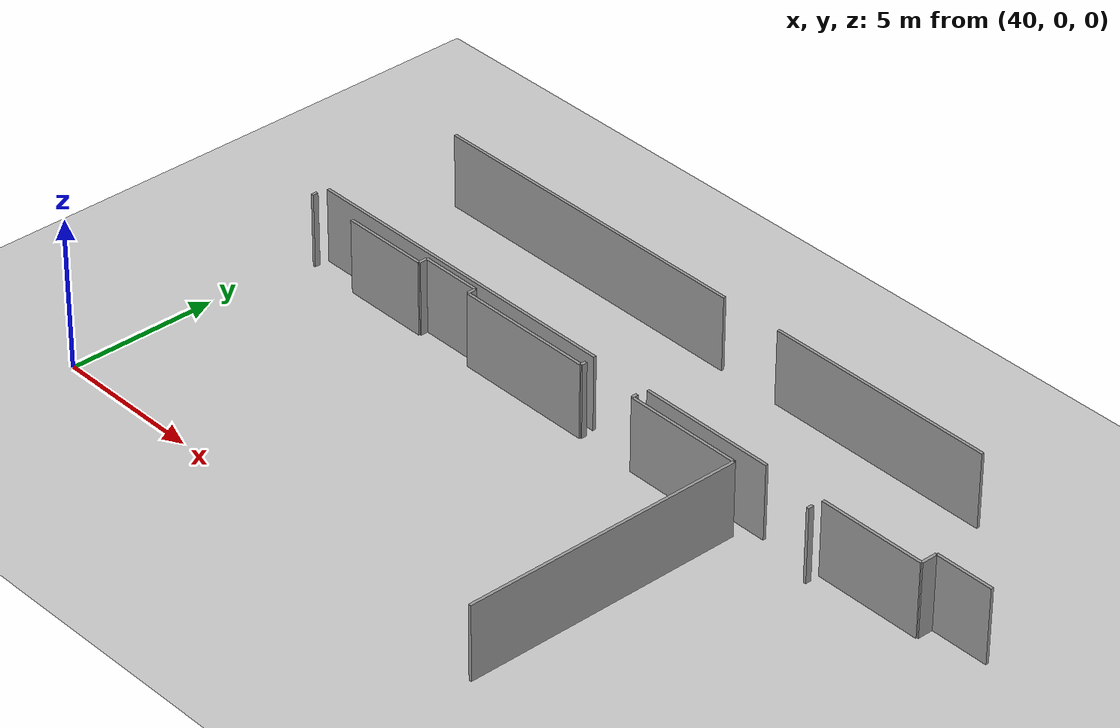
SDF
<sdf version="1.6">
 <world name="default">
  <model name="ground_plane">
   <static>1</static>
   <link name="link">
    <collision name="collision">
     <geometry><plane><normal>0 0 1</normal><size>100 100</size></plane></geometry>
     <surface><friction><ode><mu>100</mu><mu2>50</mu2></ode></friction></surface>
    </collision>
    <visual name="visual">
     <cast_shadows>0</cast_shadows>
     <geometry><plane><normal>0 0 1</normal><size>100 100</size></plane></geometry>
     <material>
      <script><uri>file://media/materials/scripts/gazebo.material</uri><name>Gazebo/Grey</name></script>
     </material>
    </visual>
   </link>
  </model>
  <model name="0510032194_A_40_1_102">
   <static>1</static>
   <link name="Wall_162">
    <collision name="Wall_162_Collision">
     <geometry><box><size>0.196277839927 0.1 2.5</size></box></geometry>
     <pose>0.0981389199634 0 1.25 0 0 0</pose>
    </collision>
    <visual name="Wall_162_Visual">
     <pose>0.0981389199634 0 1.25 0 0 0</pose>
     <geometry><box><size>0.196277839927 0.1 2.5</size></box></geometry>
     <material>
      <script><uri>file://media/materials/scripts/gazebo.material</uri><name>Gazebo/Grey</name></script>
      <ambient>1 1 1 1</ambient>
     </material>
    </visual>
    <pose>128.763983525 -15.2337791112 0 0 0 -1.57079632679</pose>
   </link>
   <link name="Wall_170">
    <collision name="Wall_170_Collision">
     <geometry><box><size>2.9594223533 0.1 2.5</size></box></geometry>
     <pose>1.47971117665 0 1.25 0 0 0</pose>
    </collision>
    <visual name="Wall_170_Visual">
     <pose>1.47971117665 0 1.25 0 0 0</pose>
     <geometry><box><size>2.9594223533 0.1 2.5</size></box></geometry>
     <material>
      <script><uri>file://media/materials/scripts/gazebo.material</uri><name>Gazebo/Grey</name></script>
      <ambient>1 1 1 1</ambient>
     </material>
    </visual>
    <pose>110.06673955 -15.4224295739 0 0 0 0.0</pose>
   </link>
   <link name="Wall_171">
    <collision name="Wall_171_Collision">
     <geometry><box><size>0.296959218957 0.1 2.5</size></box></geometry>
     <pose>0.148479609478 0 1.25 0 0 0</pose>
    </collision>
    <visual name="Wall_171_Visual">
     <pose>0.148479609478 0 1.25 0 0 0</pose>
     <geometry><box><size>0.296959218957 0.1 2.5</size></box></geometry>
     <material>
      <script><uri>file://media/materials/scripts/gazebo.material</uri><name>Gazebo/Grey</name></script>
      <ambient>1 1 1 1</ambient>
     </material>
    </visual>
    <pose>113.026161904 -15.4224295739 0 0 0 1.57079632679</pose>
   </link>
   <link name="Wall_172">
    <collision name="Wall_172_Collision">
     <geometry><box><size>2.09498627072 0.1 2.5</size></box></geometry>
     <pose>1.04749313536 0 1.25 0 0 0</pose>
    </collision>
    <visual name="Wall_172_Visual">
     <pose>1.04749313536 0 1.25 0 0 0</pose>
     <geometry><box><size>2.09498627072 0.1 2.5</size></box></geometry>
     <material>
      <script><uri>file://media/materials/scripts/gazebo.material</uri><name>Gazebo/Grey</name></script>
      <ambient>1 1 1 1</ambient>
     </material>
    </visual>
    <pose>113.026161904 -15.1254703549 0 0 0 0.0</pose>
   </link>
   <link name="Wall_173">
    <collision name="Wall_173_Collision">
     <geometry><box><size>0.290094579477 0.1 2.5</size></box></geometry>
     <pose>0.145047289739 0 1.25 0 0 0</pose>
    </collision>
    <visual name="Wall_173_Visual">
     <pose>0.145047289739 0 1.25 0 0 0</pose>
     <geometry><box><size>0.290094579477 0.1 2.5</size></box></geometry>
     <material>
      <script><uri>file://media/materials/scripts/gazebo.material</uri><name>Gazebo/Grey</name></script>
      <ambient>1 1 1 1</ambient>
     </material>
    </visual>
    <pose>115.121148175 -15.1254703549 0 0 0 -1.57079632679</pose>
   </link>
   <link name="Wall_174">
    <collision name="Wall_174_Collision">
     <geometry><box><size>4.72770263399 0.1 2.5</size></box></geometry>
     <pose>2.36385131699 0 1.25 0 0 0</pose>
    </collision>
    <visual name="Wall_174_Visual">
     <pose>2.36385131699 0 1.25 0 0 0</pose>
     <geometry><box><size>4.72770263399 0.1 2.5</size></box></geometry>
     <material>
      <script><uri>file://media/materials/scripts/gazebo.material</uri><name>Gazebo/Grey</name></script>
      <ambient>1 1 1 1</ambient>
     </material>
    </visual>
    <pose>115.121148175 -15.4155649344 0 0 0 0.0</pose>
   </link>
   <link name="Wall_175">
    <collision name="Wall_175_Collision">
     <geometry><box><size>0.180514593715 0.1 2.5</size></box></geometry>
     <pose>0.0902572968575 0 1.25 0 0 0</pose>
    </collision>
    <visual name="Wall_175_Visual">
     <pose>0.0902572968575 0 1.25 0 0 0</pose>
     <geometry><box><size>0.180514593715 0.1 2.5</size></box></geometry>
     <material>
      <script><uri>file://media/materials/scripts/gazebo.material</uri><name>Gazebo/Grey</name></script>
      <ambient>1 1 1 1</ambient>
     </material>
    </visual>
    <pose>119.848850809 -15.4155649344 0 0 0 1.57079632679</pose>
   </link>
   <link name="Wall_176">
    <collision name="Wall_176_Collision">
     <geometry><box><size>0.182802806875 0.1 2.5</size></box></geometry>
     <pose>0.0914014034374 0 1.25 0 0 0</pose>
    </collision>
    <visual name="Wall_176_Visual">
     <pose>0.0914014034374 0 1.25 0 0 0</pose>
     <geometry><box><size>0.182802806875 0.1 2.5</size></box></geometry>
     <material>
      <script><uri>file://media/materials/scripts/gazebo.material</uri><name>Gazebo/Grey</name></script>
      <ambient>1 1 1 1</ambient>
     </material>
    </visual>
    <pose>121.928582325 -15.2350503407 0 0 0 -1.57079632679</pose>
   </link>
   <link name="Wall_177">
    <collision name="Wall_177_Collision">
     <geometry><box><size>4.01962778399 0.1 2.5</size></box></geometry>
     <pose>2.009813892 0 1.25 0 0 0</pose>
    </collision>
    <visual name="Wall_177_Visual">
     <pose>2.009813892 0 1.25 0 0 0</pose>
     <geometry><box><size>4.01962778399 0.1 2.5</size></box></geometry>
     <material>
      <script><uri>file://media/materials/scripts/gazebo.material</uri><name>Gazebo/Grey</name></script>
      <ambient>1 1 1 1</ambient>
     </material>
    </visual>
    <pose>121.928582325 -15.4178531476 0 0 0 0.0</pose>
   </link>
   <link name="Wall_178">
    <collision name="Wall_178_Collision">
     <geometry><box><size>9.45883758771 0.1 2.5</size></box></geometry>
     <pose>4.72941879386 0 1.25 0 0 0</pose>
    </collision>
    <visual name="Wall_178_Visual">
     <pose>4.72941879386 0 1.25 0 0 0</pose>
     <geometry><box><size>9.45883758771 0.1 2.5</size></box></geometry>
     <material>
      <script><uri>file://media/materials/scripts/gazebo.material</uri><name>Gazebo/Grey</name></script>
      <ambient>1 1 1 1</ambient>
     </material>
    </visual>
    <pose>125.948210109 -15.4178531476 0 0 0 -1.57079632679</pose>
   </link>
   <link name="Wall_185">
    <collision name="Wall_185_Collision">
     <geometry><box><size>0.185091020035 0.1 2.5</size></box></geometry>
     <pose>0.0925455100173 0 1.25 0 0 0</pose>
    </collision>
    <visual name="Wall_185_Visual">
     <pose>0.0925455100173 0 1.25 0 0 0</pose>
     <geometry><box><size>0.185091020035 0.1 2.5</size></box></geometry>
     <material>
      <script><uri>file://media/materials/scripts/gazebo.material</uri><name>Gazebo/Grey</name></script>
      <ambient>1 1 1 1</ambient>
     </material>
    </visual>
    <pose>108.286763958 -15.2410251195 0 0 0 -1.57079632679</pose>
   </link>
   <link name="Wall_219">
    <collision name="Wall_219_Collision">
     <geometry><box><size>11.5015763246 0.1 2.5</size></box></geometry>
     <pose>5.75078816231 0 1.25 0 0 0</pose>
    </collision>
    <visual name="Wall_219_Visual">
     <pose>5.75078816231 0 1.25 0 0 0</pose>
     <geometry><box><size>11.5015763246 0.1 2.5</size></box></geometry>
     <material>
      <script><uri>file://media/materials/scripts/gazebo.material</uri><name>Gazebo/Grey</name></script>
      <ambient>1 1 1 1</ambient>
     </material>
    </visual>
    <pose>108.609147768 -10.176955151 0 0 0 0.0</pose>
   </link>
   <link name="Wall_220">
    <collision name="Wall_220_Collision">
     <geometry><box><size>7.8790806468 0.1 2.5</size></box></geometry>
     <pose>3.9395403234 0 1.25 0 0 0</pose>
    </collision>
    <visual name="Wall_220_Visual">
     <pose>3.9395403234 0 1.25 0 0 0</pose>
     <geometry><box><size>7.8790806468 0.1 2.5</size></box></geometry>
     <material>
      <script><uri>file://media/materials/scripts/gazebo.material</uri><name>Gazebo/Grey</name></script>
      <ambient>1 1 1 1</ambient>
     </material>
    </visual>
    <pose>122.271814299 -10.176955151 0 0 0 0.0</pose>
   </link>
   <link name="Wall_223">
    <collision name="Wall_223_Collision">
     <geometry><box><size>2.0060002034 0.1 2.5</size></box></geometry>
     <pose>1.0030001017 0 1.25 0 0 0</pose>
    </collision>
    <visual name="Wall_223_Visual">
     <pose>1.0030001017 0 1.25 0 0 0</pose>
     <geometry><box><size>2.0060002034 0.1 2.5</size></box></geometry>
     <material>
      <script><uri>file://media/materials/scripts/gazebo.material</uri><name>Gazebo/Grey</name></script>
      <ambient>1 1 1 1</ambient>
     </material>
    </visual>
    <pose>134.447650768 -14.3107393471 0 0 0 3.14159265359</pose>
   </link>
   <link name="Wall_224">
    <collision name="Wall_224_Collision">
     <geometry><box><size>0.566968371809 0.1 2.5</size></box></geometry>
     <pose>0.283484185905 0 1.25 0 0 0</pose>
    </collision>
    <visual name="Wall_224_Visual">
     <pose>0.283484185905 0 1.25 0 0 0</pose>
     <geometry><box><size>0.566968371809 0.1 2.5</size></box></geometry>
     <material>
      <script><uri>file://media/materials/scripts/gazebo.material</uri><name>Gazebo/Grey</name></script>
      <ambient>1 1 1 1</ambient>
     </material>
    </visual>
    <pose>132.441650564 -14.3107393471 0 0 0 -1.57079632679</pose>
   </link>
   <link name="Wall_225">
    <collision name="Wall_225_Collision">
     <geometry><box><size>3.65097121936 0.1 2.5</size></box></geometry>
     <pose>1.82548560968 0 1.25 0 0 0</pose>
    </collision>
    <visual name="Wall_225_Visual">
     <pose>1.82548560968 0 1.25 0 0 0</pose>
     <geometry><box><size>3.65097121936 0.1 2.5</size></box></geometry>
     <material>
      <script><uri>file://media/materials/scripts/gazebo.material</uri><name>Gazebo/Grey</name></script>
      <ambient>1 1 1 1</ambient>
     </material>
    </visual>
    <pose>132.441650564 -14.8777077189 0 0 0 3.14159265359</pose>
   </link>
   <link name="Wall_226">
    <collision name="Wall_226_Collision">
     <geometry><box><size>4.67812468219 0.1 2.5</size></box></geometry>
     <pose>2.3390623411 0 1.25 0 0 0</pose>
    </collision>
    <visual name="Wall_226_Visual">
     <pose>2.3390623411 0 1.25 0 0 0</pose>
     <geometry><box><size>4.67812468219 0.1 2.5</size></box></geometry>
     <material>
      <script><uri>file://media/materials/scripts/gazebo.material</uri><name>Gazebo/Grey</name></script>
      <ambient>1 1 1 1</ambient>
     </material>
    </visual>
    <pose>126.656284959 -14.8777077189 0 0 0 3.14159265359</pose>
   </link>
   <link name="Wall_227">
    <collision name="Wall_227_Collision">
     <geometry><box><size>11.4744991356 0.1 2.5</size></box></geometry>
     <pose>5.73724956778 0 1.25 0 0 0</pose>
    </collision>
    <visual name="Wall_227_Visual">
     <pose>5.73724956778 0 1.25 0 0 0</pose>
     <geometry><box><size>11.4744991356 0.1 2.5</size></box></geometry>
     <material>
      <script><uri>file://media/materials/scripts/gazebo.material</uri><name>Gazebo/Grey</name></script>
      <ambient>1 1 1 1</ambient>
     </material>
    </visual>
    <pose>119.831053595 -14.8777077189 0 0 0 3.14159265359</pose>
   </link>
   <pose>-67.7 23.8502186515 0 0 0 0</pose>
  </model>
 </world>
</sdf>
